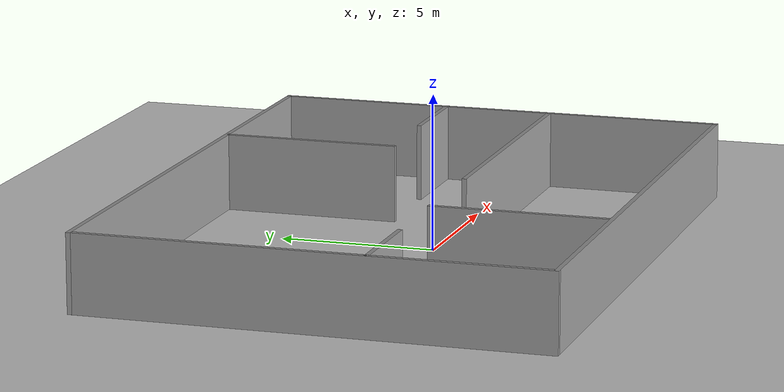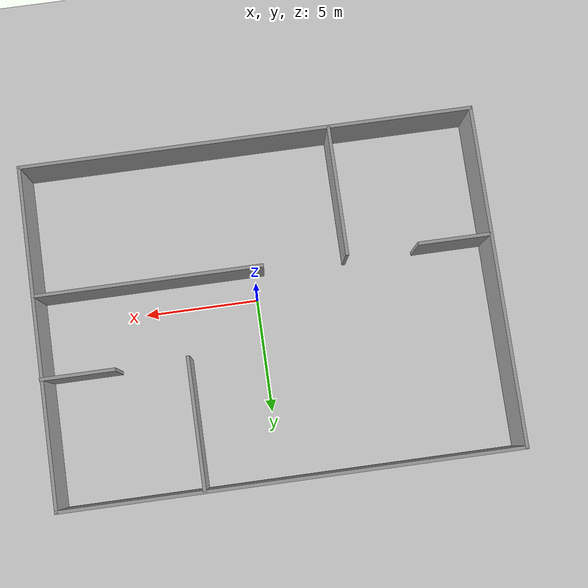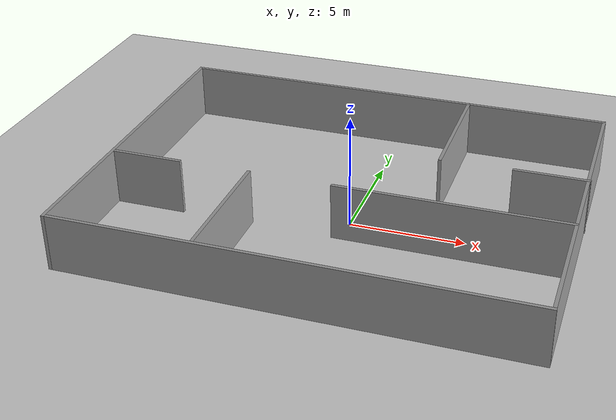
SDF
<sdf version="1.7">
 <world name="default">
  <light name="sun" type="directional">
   <pose>0 0 10 0 -0 0</pose>
   <diffuse>0.8 0.8 0.8 1</diffuse>
   <specular>0.2 0.2 0.2 1</specular>
   <attenuation>
    <range>1000</range>
    <constant>0.9</constant>
    <linear>0.01</linear>
    <quadratic>0.001</quadratic>
   </attenuation>
   <direction>-0.5 0.1 -0.9</direction>
   <spot><inner_angle>0</inner_angle><outer_angle>0</outer_angle><falloff>0</falloff></spot>
  </light>
  <model name="ground_plane">
   <static>1</static>
   <link name="link">
    <collision name="collision">
     <geometry><plane><normal>0 0 1</normal><size>100 100</size></plane></geometry>
     <surface><friction><ode><mu>100</mu><mu2>50</mu2></ode></friction></surface>
    </collision>
    <visual name="visual">
     <cast_shadows>0</cast_shadows>
     <geometry><plane><normal>0 0 1</normal><size>100 100</size></plane></geometry>
     <material>
      <script><uri>file://media/materials/scripts/gazebo.material</uri><name>Gazebo/Grey</name></script>
     </material>
    </visual>
   </link>
  </model>
  <gravity>0 0 -9.8</gravity>
  <magnetic_field>6e-06 2.3e-05 -4.2e-05</magnetic_field>
  <atmosphere type="adiabatic"/>
  <physics type="ode">
   <max_step_size>0.001</max_step_size>
   <real_time_factor>1</real_time_factor>
   <real_time_update_rate>1000</real_time_update_rate>
  </physics>
  <scene><ambient>0.4 0.4 0.4 1</ambient><background>0.7 0.7 0.7 1</background><shadows>1</shadows></scene>
  <spherical_coordinates>
   <surface_model>EARTH_WGS84</surface_model>
   <latitude_deg>0</latitude_deg>
   <longitude_deg>0</longitude_deg>
   <elevation>0</elevation>
   <heading_deg>0</heading_deg>
  </spherical_coordinates>
  <model name="room_world">
   <pose>-0.41866 0.587199 0 0 -0 0</pose>
   <link name="Wall_28">
    <collision name="Wall_28_Collision">
     <geometry><box><size>15 0.15 2.5</size></box></geometry>
     <pose>0 0 1.25 0 -0 0</pose>
    </collision>
    <visual name="Wall_28_Visual">
     <pose>0 0 1.25 0 -0 0</pose>
     <geometry><box><size>15 0.15 2.5</size></box></geometry>
     <material>
      <script><uri>file://media/materials/scripts/gazebo.material</uri><name>Gazebo/Grey</name></script>
      <ambient>1 1 1 1</ambient>
     </material>
     <meta><layer>0</layer></meta>
    </visual>
    <pose>-9.94216 -0 0 0 -0 -1.5708</pose>
   </link>
   <link name="Wall_30">
    <collision name="Wall_30_Collision">
     <geometry><box><size>20 0.15 2.5</size></box></geometry>
     <pose>0 0 1.25 0 -0 0</pose>
    </collision>
    <visual name="Wall_30_Visual">
     <pose>0 0 1.25 0 -0 0</pose>
     <geometry><box><size>20 0.15 2.5</size></box></geometry>
     <material>
      <script><uri>file://media/materials/scripts/gazebo.material</uri><name>Gazebo/Grey</name></script>
      <ambient>1 1 1 1</ambient>
     </material>
     <meta><layer>0</layer></meta>
    </visual>
    <pose>-0.017164 7.425 0 0 -0 0</pose>
   </link>
   <link name="Wall_31">
    <collision name="Wall_31_Collision">
     <geometry><box><size>15 0.15 2.5</size></box></geometry>
     <pose>0 0 1.25 0 -0 0</pose>
    </collision>
    <visual name="Wall_31_Visual">
     <pose>0 0 1.25 0 -0 0</pose>
     <geometry><box><size>15 0.15 2.5</size></box></geometry>
     <material>
      <script><uri>file://media/materials/scripts/gazebo.material</uri><name>Gazebo/Grey</name></script>
      <ambient>1 1 1 1</ambient>
     </material>
     <meta><layer>0</layer></meta>
    </visual>
    <pose>9.90784 -0 0 0 -0 -1.5708</pose>
   </link>
   <link name="Wall_32">
    <collision name="Wall_32_Collision">
     <geometry><box><size>20 0.15 2.5</size></box></geometry>
     <pose>0 0 1.25 0 -0 0</pose>
    </collision>
    <visual name="Wall_32_Visual">
     <pose>0 0 1.25 0 -0 0</pose>
     <geometry><box><size>20 0.15 2.5</size></box></geometry>
     <material>
      <script><uri>file://media/materials/scripts/gazebo.material</uri><name>Gazebo/Grey</name></script>
      <ambient>1 1 1 1</ambient>
     </material>
     <meta><layer>0</layer></meta>
    </visual>
    <pose>-0.017164 -7.425 0 0 -0 3.14159</pose>
   </link>
   <link name="Wall_34">
    <collision name="Wall_34_Collision">
     <geometry><box><size>3.25 0.15 2.5</size></box></geometry>
     <pose>0 0 1.25 0 -0 0</pose>
    </collision>
    <visual name="Wall_34_Visual">
     <pose>0 0 1.25 0 -0 0</pose>
     <geometry><box><size>3.25 0.15 2.5</size></box></geometry>
     <material>
      <script><uri>file://media/materials/scripts/gazebo.material</uri><name>Gazebo/Grey</name></script>
      <ambient>1 1 1 1</ambient>
     </material>
     <meta><layer>0</layer></meta>
    </visual>
    <pose>-8.3798 -1.76737 0 0 -0 0</pose>
   </link>
   <link name="Wall_36">
    <collision name="Wall_36_Collision">
     <geometry><box><size>5.75 0.15 2.5</size></box></geometry>
     <pose>0 0 1.25 0 -0 0</pose>
    </collision>
    <visual name="Wall_36_Visual">
     <pose>0 0 1.25 0 -0 0</pose>
     <geometry><box><size>5.75 0.15 2.5</size></box></geometry>
     <material>
      <script><uri>file://media/materials/scripts/gazebo.material</uri><name>Gazebo/Grey</name></script>
      <ambient>1 1 1 1</ambient>
     </material>
     <meta><layer>0</layer></meta>
    </visual>
    <pose>-3.66468 -4.55242 0 0 -0 -1.5708</pose>
   </link>
   <link name="Wall_38">
    <collision name="Wall_38_Collision">
     <geometry><box><size>5.75 0.15 2.5</size></box></geometry>
     <pose>0 0 1.25 0 -0 0</pose>
    </collision>
    <visual name="Wall_38_Visual">
     <pose>0 0 1.25 0 -0 0</pose>
     <geometry><box><size>5.75 0.15 2.5</size></box></geometry>
     <material>
      <script><uri>file://media/materials/scripts/gazebo.material</uri><name>Gazebo/Grey</name></script>
      <ambient>1 1 1 1</ambient>
     </material>
     <meta><layer>0</layer></meta>
    </visual>
    <pose>3.67704 4.5537 0 0 -0 -1.5708</pose>
   </link>
   <link name="Wall_41">
    <collision name="Wall_41_Collision">
     <geometry><box><size>3.25 0.15 2.5</size></box></geometry>
     <pose>0 0 1.25 0 -0 0</pose>
    </collision>
    <visual name="Wall_41_Visual">
     <pose>0 0 1.25 0 -0 0</pose>
     <geometry><box><size>3.25 0.15 2.5</size></box></geometry>
     <material>
      <script><uri>file://media/materials/scripts/gazebo.material</uri><name>Gazebo/Grey</name></script>
      <ambient>1 1 1 1</ambient>
     </material>
     <meta><layer>0</layer></meta>
    </visual>
    <pose>8.39217 1.8362 0 0 -0 3.14159</pose>
   </link>
   <link name="Wall_43">
    <collision name="Wall_43_Collision">
     <geometry><box><size>10 0.15 2.5</size></box></geometry>
     <pose>0 0 1.25 0 -0 0</pose>
    </collision>
    <visual name="Wall_43_Visual">
     <pose>0 0 1.25 0 -0 0</pose>
     <geometry><box><size>10 0.15 2.5</size></box></geometry>
     <material>
      <script><uri>file://media/materials/scripts/gazebo.material</uri><name>Gazebo/Grey</name></script>
      <ambient>1 1 1 1</ambient>
     </material>
     <meta><layer>0</layer></meta>
    </visual>
    <pose>4.95598 -1.73747 0 0 -0 0</pose>
   </link>
   <static>1</static>
  </model>
 </world>
</sdf>
